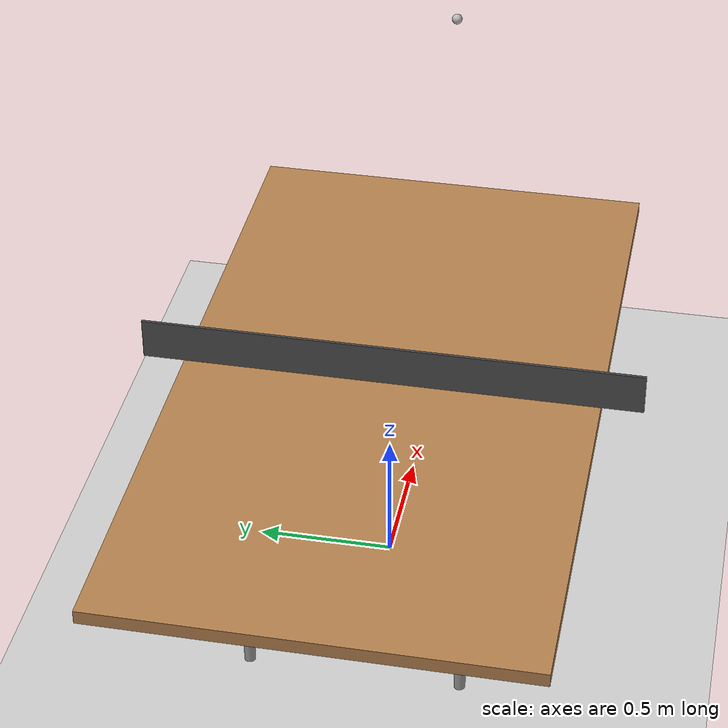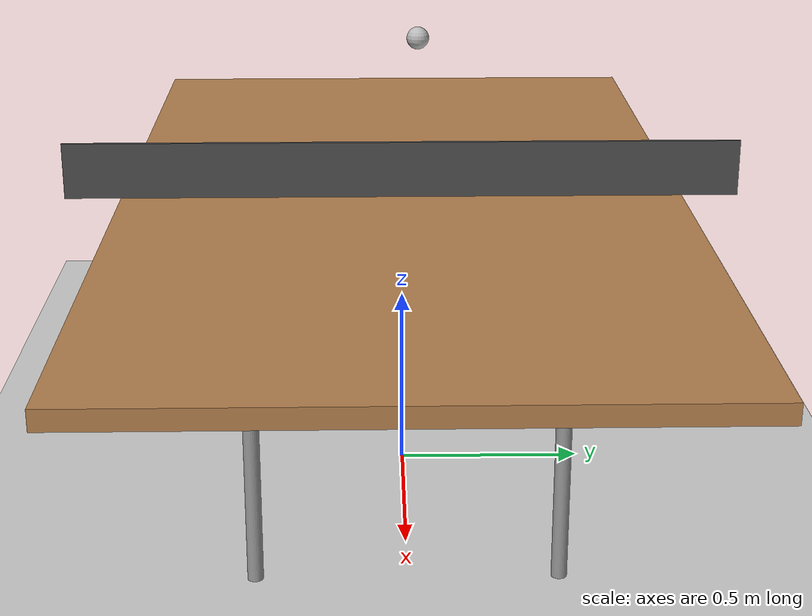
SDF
<sdf version="1.6">
 <world name="default">
  <light name="sun" type="directional">
   <pose>0 0 10 0 -0 0</pose>
   <diffuse>0.8 0.8 0.8 1</diffuse>
   <specular>0.1 0.1 0.1 1</specular>
   <attenuation>
    <range>1000</range>
    <constant>0.9</constant>
    <linear>0.01</linear>
    <quadratic>0.001</quadratic>
   </attenuation>
   <direction>-0.5 0.5 -1</direction>
  </light>
  <model name="ground_plane">
   <static>1</static>
   <link name="link">
    <collision name="collision">
     <geometry><plane><normal>0 0 1</normal><size>100 100</size></plane></geometry>
     <surface><friction><ode><mu>100</mu><mu2>50</mu2></ode></friction></surface>
    </collision>
    <visual name="visual">
     <cast_shadows>0</cast_shadows>
     <geometry><plane><normal>0 0 1</normal><size>100 100</size></plane></geometry>
     <material>
      <script><uri>file://media/materials/scripts/gazebo.material</uri><name>Gazebo/Grey</name></script>
     </material>
    </visual>
   </link>
  </model>
  <gravity>0 0 -9.8</gravity>
  <magnetic_field>6e-06 2.3e-05 -4.2e-05</magnetic_field>
  <atmosphere type="adiabatic"/>
  <physics name="default_physics" default="0" type="ode">
   <max_step_size>0.001</max_step_size>
   <real_time_factor>1</real_time_factor>
   <real_time_update_rate>1000</real_time_update_rate>
  </physics>
  <scene><ambient>0.4 0.4 0.4 1</ambient><background>0.7 0.7 0.7 1</background><shadows>1</shadows></scene>
  <spherical_coordinates>
   <surface_model>EARTH_WGS84</surface_model>
   <latitude_deg>0</latitude_deg>
   <longitude_deg>0</longitude_deg>
   <elevation>0</elevation>
   <heading_deg>0</heading_deg>
  </spherical_coordinates>
  <model name="table">
   <static>1</static>
   <link name="link">
    <collision name="surface">
     <pose>0 0 0.76 0 -0 0</pose>
     <geometry><box><size>2.74 1.525 0.05</size></box></geometry>
     <surface>
      <bounce><restitution_coefficient>0.9</restitution_coefficient><threshold>0</threshold></bounce>
      <friction><ode><mu>0.1</mu><mu2>0.1</mu2></ode></friction>
     </surface>
    </collision>
    <visual name="visual1">
     <pose>0 0 0.76 0 -0 0</pose>
     <geometry><box><size>2.74 1.525 0.05</size></box></geometry>
     <material>
      <script><uri>file://media/materials/scripts/gazebo.material</uri><name>Gazebo/Wood</name></script>
     </material>
    </visual>
    <collision name="mesh">
     <pose>0 0 0.86125 0 -0 0</pose>
     <geometry><box><size>0.01 1.83 0.1525</size></box></geometry>
     <surface>
      <bounce><restitution_coefficient>0.6</restitution_coefficient><threshold>0</threshold></bounce>
      <friction><ode><mu>0.3</mu><mu2>0.3</mu2></ode></friction>
     </surface>
    </collision>
    <visual name="mesh">
     <pose>0 0 0.86125 0 -0 0</pose>
     <geometry><box><size>0.01 1.83 0.1525</size></box></geometry>
     <material>
      <script><uri>file://media/materials/scripts/gazebo.material</uri><name>Gazebo/DarkGrey</name></script>
     </material>
    </visual>
    <collision name="front_left_leg">
     <pose>0.68 0.38 0.38 0 -0 0</pose>
     <geometry><cylinder><radius>0.02</radius><length>0.76</length></cylinder></geometry>
    </collision>
    <visual name="front_left_leg">
     <pose>0.68 0.38 0.38 0 -0 0</pose>
     <geometry><cylinder><radius>0.02</radius><length>0.76</length></cylinder></geometry>
     <material>
      <script><uri>file://media/materials/scripts/gazebo.material</uri><name>Gazebo/Grey</name></script>
     </material>
    </visual>
    <collision name="front_right_leg">
     <pose>0.68 -0.38 0.38 0 -0 0</pose>
     <geometry><cylinder><radius>0.02</radius><length>0.76</length></cylinder></geometry>
    </collision>
    <visual name="front_right_leg">
     <pose>0.68 -0.38 0.38 0 -0 0</pose>
     <geometry><cylinder><radius>0.02</radius><length>0.76</length></cylinder></geometry>
     <material>
      <script><uri>file://media/materials/scripts/gazebo.material</uri><name>Gazebo/Grey</name></script>
     </material>
    </visual>
    <collision name="back_right_leg">
     <pose>-0.68 -0.38 0.38 0 -0 0</pose>
     <geometry><cylinder><radius>0.02</radius><length>0.76</length></cylinder></geometry>
    </collision>
    <visual name="back_right_leg">
     <pose>-0.68 -0.38 0.38 0 -0 0</pose>
     <geometry><cylinder><radius>0.02</radius><length>0.76</length></cylinder></geometry>
     <material>
      <script><uri>file://media/materials/scripts/gazebo.material</uri><name>Gazebo/Grey</name></script>
     </material>
    </visual>
    <collision name="back_left_leg">
     <pose>-0.68 0.38 0.38 0 -0 0</pose>
     <geometry><cylinder><radius>0.02</radius><length>0.76</length></cylinder></geometry>
    </collision>
    <visual name="back_left_leg">
     <pose>-0.68 0.38 0.38 0 -0 0</pose>
     <geometry><cylinder><radius>0.02</radius><length>0.76</length></cylinder></geometry>
     <material>
      <script><uri>file://media/materials/scripts/gazebo.material</uri><name>Gazebo/Grey</name></script>
     </material>
    </visual>
   </link>
  </model>
  <model name="table_tennis_ball">
   <pose>1.40474 0 1.52227 0 0 0</pose>
   <self_collide>1</self_collide>
   <link name="ball">
    <inertial>
     <mass>0.0027</mass>
     <inertia><ixx>7.2e-06</ixx><iyy>7.2e-06</iyy><izz>7.2e-06</izz><ixy>0</ixy><ixz>0</ixz><iyz>0</iyz></inertia>
    </inertial>
    <visual name="visual"><geometry><sphere><radius>0.02</radius></sphere></geometry></visual>
    <sensor name="my_contact" type="contact">
     <contact><collision>ball_collision</collision></contact>
     <update_rate>50</update_rate>
    </sensor>
    <collision name="ball_collision">
     <geometry><sphere><radius>0.02</radius></sphere></geometry>
     <surface>
      <bounce><restitution_coefficient>0.9</restitution_coefficient><threshold>0</threshold></bounce>
      <friction><ode><mu>0.2</mu><mu2>0.2</mu2></ode></friction>
      <contact><ode><max_vel>8</max_vel></ode></contact>
     </surface>
    </collision>
   </link>
   <plugin name="vel" filename="libmodel_push.so"/>
  </model>
 </world>
</sdf>
